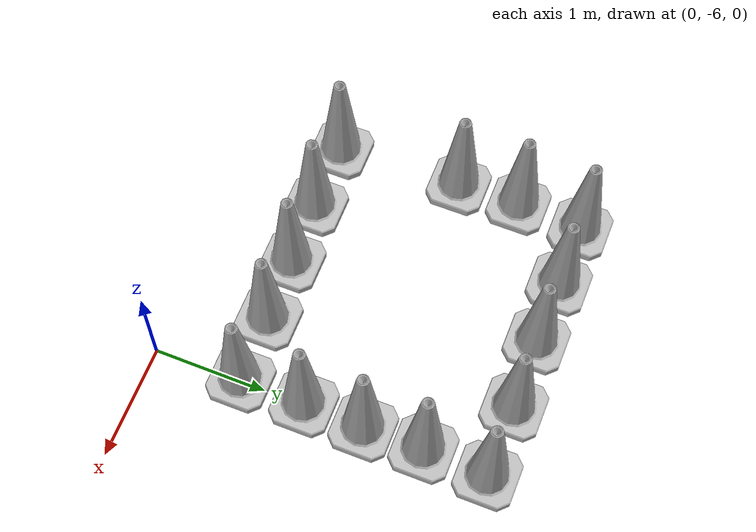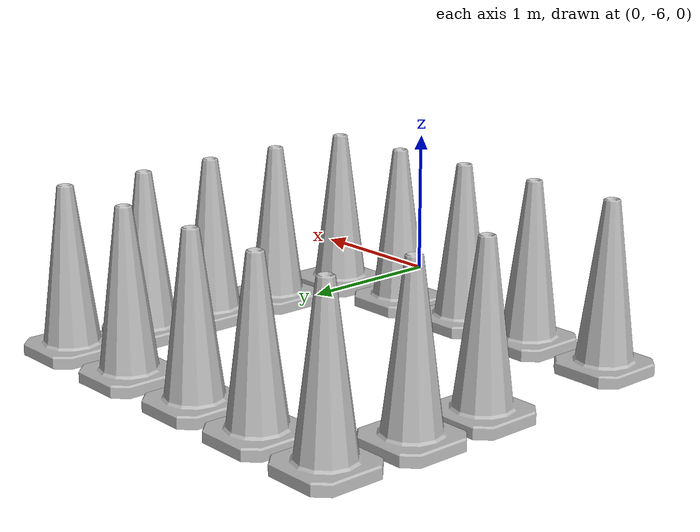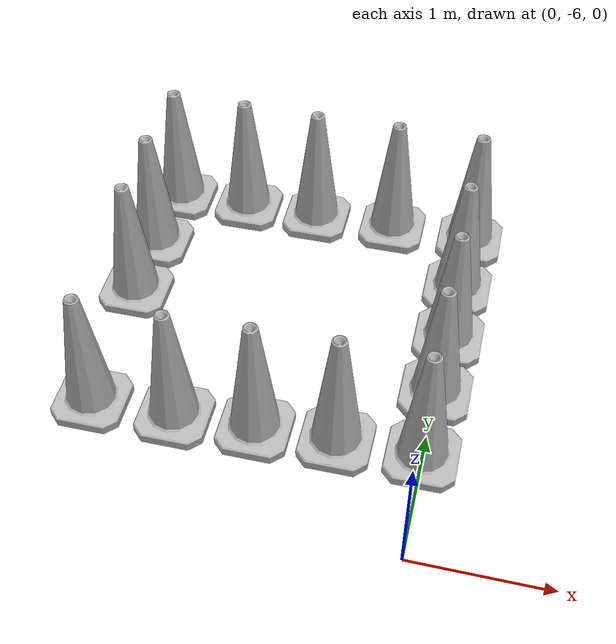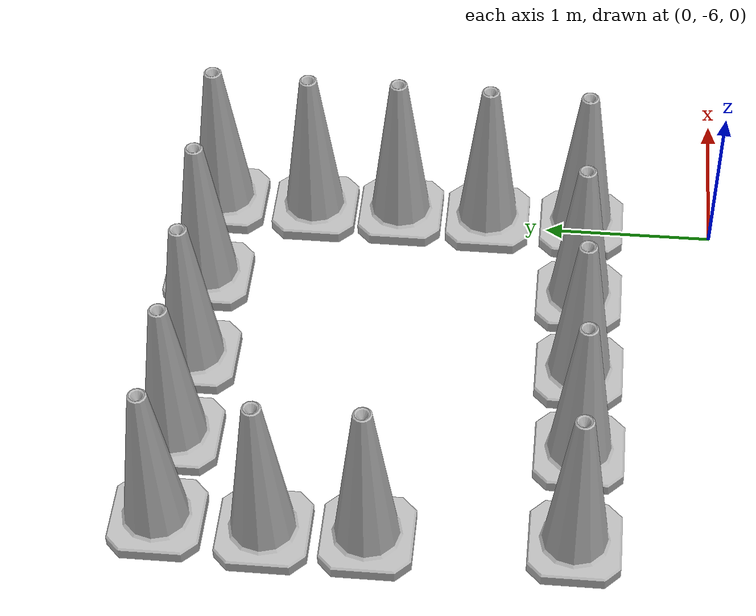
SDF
<sdf version="1.7">
 <world name="default">
  <gravity>0 0 -9.8</gravity>
  <physics name="default_physics" default="0" type="ode">
   <max_step_size>0.001</max_step_size>
   <real_time_factor>1</real_time_factor>
   <real_time_update_rate>1000</real_time_update_rate>
  </physics>
  <light name="Warehouse_CeilingLight_003" type="point">
   <pose>0 0 9 0 -0 0</pose>
   <diffuse>0.5 0.5 0.5 1</diffuse>
   <specular>0.2 0.2 0.2 1</specular>
   <attenuation>
    <range>80</range>
    <constant>0.3</constant>
    <linear>0.01</linear>
    <quadratic>0.001</quadratic>
   </attenuation>
   <direction>0.1 0.1 -1</direction>
   <spot><inner_angle>0</inner_angle><outer_angle>0</outer_angle><falloff>0</falloff></spot>
  </light>
  <magnetic_field>6e-06 2.3e-05 -4.2e-05</magnetic_field>
  <atmosphere type="adiabatic"/>
  <scene><ambient>0.4 0.4 0.4 1</ambient><background>0.7 0.7 0.7 1</background><shadows>1</shadows></scene>
  <spherical_coordinates>
   <surface_model>EARTH_WGS84</surface_model>
   <latitude_deg>0</latitude_deg>
   <longitude_deg>0</longitude_deg>
   <elevation>0</elevation>
   <heading_deg>0</heading_deg>
  </spherical_coordinates>
  <light name="user_directional_light_0" type="directional">
   <pose>0.00905 -0.00479 1 0 -0 0</pose>
   <diffuse>0.5 0.5 0.5 1</diffuse>
   <specular>0.1 0.1 0.1 1</specular>
   <direction>0.1 0.1 -0.9</direction>
   <attenuation>
    <range>20</range>
    <constant>0.5</constant>
    <linear>0.01</linear>
    <quadratic>0.001</quadratic>
   </attenuation>
   <spot><inner_angle>0</inner_angle><outer_angle>0</outer_angle><falloff>0</falloff></spot>
  </light>
  <light name="user_directional_light_1" type="directional">
   <pose>0.024551 -0.025394 1 0 -0 0</pose>
   <diffuse>0.5 0.5 0.5 1</diffuse>
   <specular>0.1 0.1 0.1 1</specular>
   <direction>0.1 0.1 -0.9</direction>
   <attenuation>
    <range>20</range>
    <constant>0.5</constant>
    <linear>0.01</linear>
    <quadratic>0.001</quadratic>
   </attenuation>
   <spot><inner_angle>0</inner_angle><outer_angle>0</outer_angle><falloff>0</falloff></spot>
  </light>
  <light name="user_directional_light_2" type="directional">
   <pose>0.00901 0.02091 1 0 -0 0</pose>
   <diffuse>0.5 0.5 0.5 1</diffuse>
   <specular>0.1 0.1 0.1 1</specular>
   <direction>0.1 0.1 -0.9</direction>
   <attenuation>
    <range>20</range>
    <constant>0.5</constant>
    <linear>0.01</linear>
    <quadratic>0.001</quadratic>
   </attenuation>
   <spot><inner_angle>0</inner_angle><outer_angle>0</outer_angle><falloff>0</falloff></spot>
  </light>
  <light name="user_directional_light_3" type="directional">
   <pose>-0.006412 -0.009892 1 0 -0 0</pose>
   <diffuse>0.5 0.5 0.5 1</diffuse>
   <specular>0.1 0.1 0.1 1</specular>
   <direction>0.1 0.1 -0.9</direction>
   <attenuation>
    <range>20</range>
    <constant>0.5</constant>
    <linear>0.01</linear>
    <quadratic>0.001</quadratic>
   </attenuation>
   <spot><inner_angle>0</inner_angle><outer_angle>0</outer_angle><falloff>0</falloff></spot>
  </light>
  <light name="user_directional_light_4" type="directional">
   <pose>-0.00127 0.000377 1 0 -0 0</pose>
   <diffuse>0.5 0.5 0.5 1</diffuse>
   <specular>0.1 0.1 0.1 1</specular>
   <direction>0.1 0.1 -0.9</direction>
   <attenuation>
    <range>20</range>
    <constant>0.5</constant>
    <linear>0.01</linear>
    <quadratic>0.001</quadratic>
   </attenuation>
   <spot><inner_angle>0</inner_angle><outer_angle>0</outer_angle><falloff>0</falloff></spot>
  </light>
  <model name="Construction Cone">
   <link name="link">
    <collision name="collision">
     <geometry>
      <mesh><scale>10 10 10</scale><uri>model://construction_cone/meshes/construction_cone.dae</uri></mesh>
     </geometry>
    </collision>
    <visual name="visual">
     <geometry>
      <mesh><scale>10 10 10</scale><uri>model://construction_cone/meshes/construction_cone.dae</uri></mesh>
     </geometry>
    </visual>
    <inertial>
     <inertia><ixx>1</ixx><ixy>0</ixy><ixz>0</ixz><iyy>1</iyy><iyz>0</iyz><izz>1</izz></inertia>
     <mass>1</mass>
    </inertial>
   </link>
   <pose>0.033233 -3.00558 0.034224 0 -0 0</pose>
  </model>
  <model name="Construction Cone_clone">
   <link name="link">
    <collision name="collision">
     <geometry>
      <mesh><scale>10 10 10</scale><uri>model://construction_cone/meshes/construction_cone.dae</uri></mesh>
     </geometry>
    </collision>
    <visual name="visual">
     <geometry>
      <mesh><scale>10 10 10</scale><uri>model://construction_cone/meshes/construction_cone.dae</uri></mesh>
     </geometry>
    </visual>
    <inertial>
     <inertia><ixx>1</ixx><ixy>0</ixy><ixz>0</ixz><iyy>1</iyy><iyz>0</iyz><izz>1</izz></inertia>
     <mass>1</mass>
    </inertial>
   </link>
   <pose>0.011553 -3.57008 0.034215 2e-06 -0 0</pose>
  </model>
  <model name="Construction Cone_clone_0">
   <link name="link">
    <collision name="collision">
     <geometry>
      <mesh><scale>10 10 10</scale><uri>model://construction_cone/meshes/construction_cone.dae</uri></mesh>
     </geometry>
    </collision>
    <visual name="visual">
     <geometry>
      <mesh><scale>10 10 10</scale><uri>model://construction_cone/meshes/construction_cone.dae</uri></mesh>
     </geometry>
    </visual>
    <inertial>
     <inertia><ixx>1</ixx><ixy>0</ixy><ixz>0</ixz><iyy>1</iyy><iyz>0</iyz><izz>1</izz></inertia>
     <mass>1</mass>
    </inertial>
   </link>
   <pose>0.018331 -4.09918 0.034214 0 -0 0</pose>
  </model>
  <model name="Construction Cone_clone_1">
   <link name="link">
    <collision name="collision">
     <geometry>
      <mesh><scale>10 10 10</scale><uri>model://construction_cone/meshes/construction_cone.dae</uri></mesh>
     </geometry>
    </collision>
    <visual name="visual">
     <geometry>
      <mesh><scale>10 10 10</scale><uri>model://construction_cone/meshes/construction_cone.dae</uri></mesh>
     </geometry>
    </visual>
    <inertial>
     <inertia><ixx>1</ixx><ixy>0</ixy><ixz>0</ixz><iyy>1</iyy><iyz>0</iyz><izz>1</izz></inertia>
     <mass>1</mass>
    </inertial>
   </link>
   <pose>0.002514 -4.63596 0.034224 1e-06 -0 0</pose>
  </model>
  <model name="Construction Cone_clone_2">
   <link name="link">
    <collision name="collision">
     <geometry>
      <mesh><scale>10 10 10</scale><uri>model://construction_cone/meshes/construction_cone.dae</uri></mesh>
     </geometry>
    </collision>
    <visual name="visual">
     <geometry>
      <mesh><scale>10 10 10</scale><uri>model://construction_cone/meshes/construction_cone.dae</uri></mesh>
     </geometry>
    </visual>
    <inertial>
     <inertia><ixx>1</ixx><ixy>0</ixy><ixz>0</ixz><iyy>1</iyy><iyz>0</iyz><izz>1</izz></inertia>
     <mass>1</mass>
    </inertial>
   </link>
   <pose>-0.002355 -5.21153 0.034224 1e-06 -0 0</pose>
  </model>
  <model name="Construction Cone_clone_3">
   <link name="link">
    <collision name="collision">
     <geometry>
      <mesh><scale>10 10 10</scale><uri>model://construction_cone/meshes/construction_cone.dae</uri></mesh>
     </geometry>
    </collision>
    <visual name="visual">
     <geometry>
      <mesh><scale>10 10 10</scale><uri>model://construction_cone/meshes/construction_cone.dae</uri></mesh>
     </geometry>
    </visual>
    <inertial>
     <inertia><ixx>1</ixx><ixy>0</ixy><ixz>0</ixz><iyy>1</iyy><iyz>0</iyz><izz>1</izz></inertia>
     <mass>1</mass>
    </inertial>
   </link>
   <pose>-0.605527 -3.00033 0.034224 0 -0 0</pose>
  </model>
  <model name="Construction Cone_clone_4">
   <link name="link">
    <collision name="collision">
     <geometry>
      <mesh><scale>10 10 10</scale><uri>model://construction_cone/meshes/construction_cone.dae</uri></mesh>
     </geometry>
    </collision>
    <visual name="visual">
     <geometry>
      <mesh><scale>10 10 10</scale><uri>model://construction_cone/meshes/construction_cone.dae</uri></mesh>
     </geometry>
    </visual>
    <inertial>
     <inertia><ixx>1</ixx><ixy>0</ixy><ixz>0</ixz><iyy>1</iyy><iyz>0</iyz><izz>1</izz></inertia>
     <mass>1</mass>
    </inertial>
   </link>
   <pose>-1.23999 -3.01636 0.034215 0 1e-06 0</pose>
  </model>
  <model name="Construction Cone_clone_5">
   <link name="link">
    <collision name="collision">
     <geometry>
      <mesh><scale>10 10 10</scale><uri>model://construction_cone/meshes/construction_cone.dae</uri></mesh>
     </geometry>
    </collision>
    <visual name="visual">
     <geometry>
      <mesh><scale>10 10 10</scale><uri>model://construction_cone/meshes/construction_cone.dae</uri></mesh>
     </geometry>
    </visual>
    <inertial>
     <inertia><ixx>1</ixx><ixy>0</ixy><ixz>0</ixz><iyy>1</iyy><iyz>0</iyz><izz>1</izz></inertia>
     <mass>1</mass>
    </inertial>
   </link>
   <pose>-1.82464 -3.0104 0.034215 1e-06 -0 0</pose>
  </model>
  <model name="Construction Cone_clone_6">
   <link name="link">
    <collision name="collision">
     <geometry>
      <mesh><scale>10 10 10</scale><uri>model://construction_cone/meshes/construction_cone.dae</uri></mesh>
     </geometry>
    </collision>
    <visual name="visual">
     <geometry>
      <mesh><scale>10 10 10</scale><uri>model://construction_cone/meshes/construction_cone.dae</uri></mesh>
     </geometry>
    </visual>
    <inertial>
     <inertia><ixx>1</ixx><ixy>0</ixy><ixz>0</ixz><iyy>1</iyy><iyz>0</iyz><izz>1</izz></inertia>
     <mass>1</mass>
    </inertial>
   </link>
   <pose>-2.40155 -3.00602 0.034224 0 -0 0</pose>
  </model>
  <model name="Construction Cone_clone_7">
   <link name="link">
    <collision name="collision">
     <geometry>
      <mesh><scale>10 10 10</scale><uri>model://construction_cone/meshes/construction_cone.dae</uri></mesh>
     </geometry>
    </collision>
    <visual name="visual">
     <geometry>
      <mesh><scale>10 10 10</scale><uri>model://construction_cone/meshes/construction_cone.dae</uri></mesh>
     </geometry>
    </visual>
    <inertial>
     <inertia><ixx>1</ixx><ixy>0</ixy><ixz>0</ixz><iyy>1</iyy><iyz>0</iyz><izz>1</izz></inertia>
     <mass>1</mass>
    </inertial>
   </link>
   <pose>-0.603533 -5.21716 0.034215 0 -0 0</pose>
  </model>
  <model name="Construction Cone_clone_8">
   <link name="link">
    <collision name="collision">
     <geometry>
      <mesh><scale>10 10 10</scale><uri>model://construction_cone/meshes/construction_cone.dae</uri></mesh>
     </geometry>
    </collision>
    <visual name="visual">
     <geometry>
      <mesh><scale>10 10 10</scale><uri>model://construction_cone/meshes/construction_cone.dae</uri></mesh>
     </geometry>
    </visual>
    <inertial>
     <inertia><ixx>1</ixx><ixy>0</ixy><ixz>0</ixz><iyy>1</iyy><iyz>0</iyz><izz>1</izz></inertia>
     <mass>1</mass>
    </inertial>
   </link>
   <pose>-1.1804 -5.24009 0.034224 -2e-06 0 0</pose>
  </model>
  <model name="Construction Cone_clone_9">
   <link name="link">
    <collision name="collision">
     <geometry>
      <mesh><scale>10 10 10</scale><uri>model://construction_cone/meshes/construction_cone.dae</uri></mesh>
     </geometry>
    </collision>
    <visual name="visual">
     <geometry>
      <mesh><scale>10 10 10</scale><uri>model://construction_cone/meshes/construction_cone.dae</uri></mesh>
     </geometry>
    </visual>
    <inertial>
     <inertia><ixx>1</ixx><ixy>0</ixy><ixz>0</ixz><iyy>1</iyy><iyz>0</iyz><izz>1</izz></inertia>
     <mass>1</mass>
    </inertial>
   </link>
   <pose>-1.7632 -5.26325 0.034224 0 -0 0</pose>
  </model>
  <model name="Construction Cone_clone_10">
   <link name="link">
    <collision name="collision">
     <geometry>
      <mesh><scale>10 10 10</scale><uri>model://construction_cone/meshes/construction_cone.dae</uri></mesh>
     </geometry>
    </collision>
    <visual name="visual">
     <geometry>
      <mesh><scale>10 10 10</scale><uri>model://construction_cone/meshes/construction_cone.dae</uri></mesh>
     </geometry>
    </visual>
    <inertial>
     <inertia><ixx>1</ixx><ixy>0</ixy><ixz>0</ixz><iyy>1</iyy><iyz>0</iyz><izz>1</izz></inertia>
     <mass>1</mass>
    </inertial>
   </link>
   <pose>-2.3807 -5.26355 0.034224 0 -0 0</pose>
  </model>
  <model name="Construction Cone_clone_11">
   <link name="link">
    <collision name="collision">
     <geometry>
      <mesh><scale>10 10 10</scale><uri>model://construction_cone/meshes/construction_cone.dae</uri></mesh>
     </geometry>
    </collision>
    <visual name="visual">
     <geometry>
      <mesh><scale>10 10 10</scale><uri>model://construction_cone/meshes/construction_cone.dae</uri></mesh>
     </geometry>
    </visual>
    <inertial>
     <inertia><ixx>1</ixx><ixy>0</ixy><ixz>0</ixz><iyy>1</iyy><iyz>0</iyz><izz>1</izz></inertia>
     <mass>1</mass>
    </inertial>
   </link>
   <pose>-2.43542 -3.59147 0.034224 0 -0 0</pose>
  </model>
  <model name="Construction Cone_clone_12">
   <link name="link">
    <collision name="collision">
     <geometry>
      <mesh><scale>10 10 10</scale><uri>model://construction_cone/meshes/construction_cone.dae</uri></mesh>
     </geometry>
    </collision>
    <visual name="visual">
     <geometry>
      <mesh><scale>10 10 10</scale><uri>model://construction_cone/meshes/construction_cone.dae</uri></mesh>
     </geometry>
    </visual>
    <inertial>
     <inertia><ixx>1</ixx><ixy>0</ixy><ixz>0</ixz><iyy>1</iyy><iyz>0</iyz><izz>1</izz></inertia>
     <mass>1</mass>
    </inertial>
   </link>
   <pose>-2.42733 -4.15209 0.034224 0 -0 0</pose>
  </model>
 </world>
</sdf>
